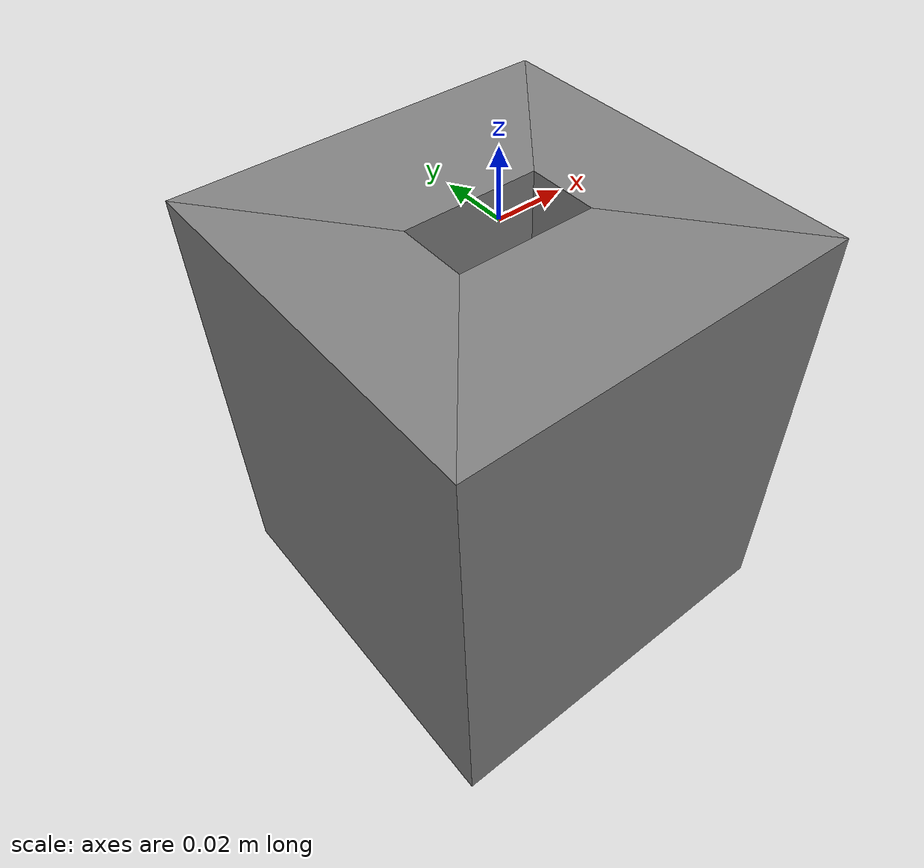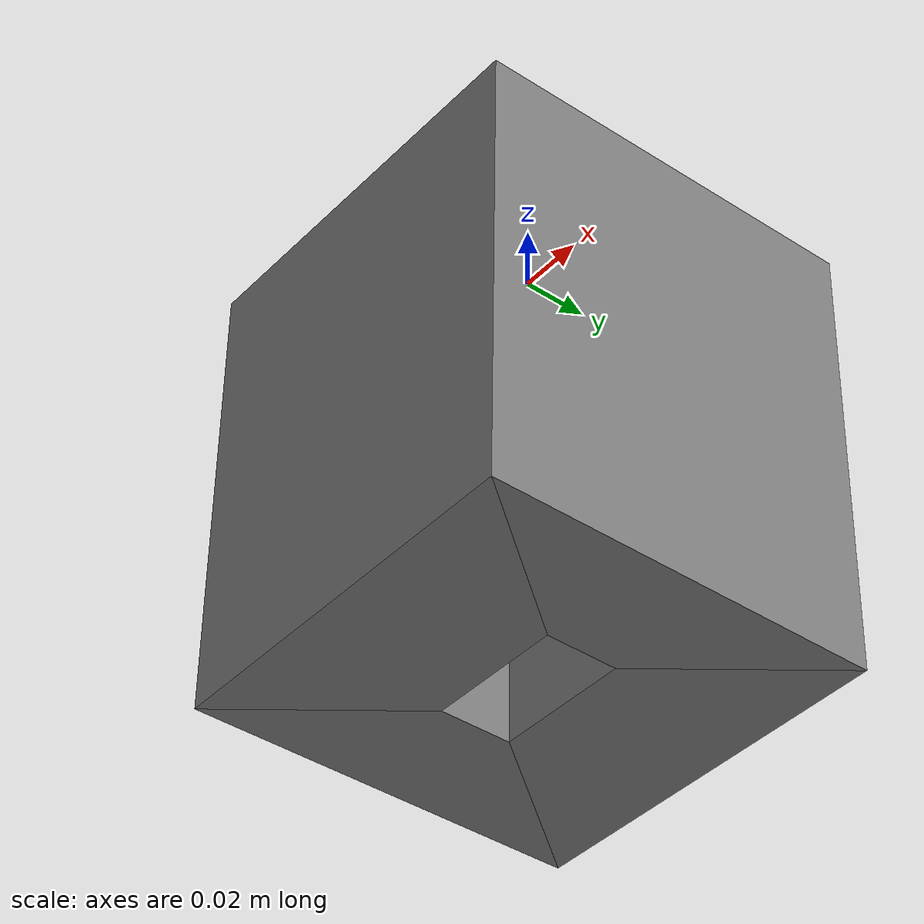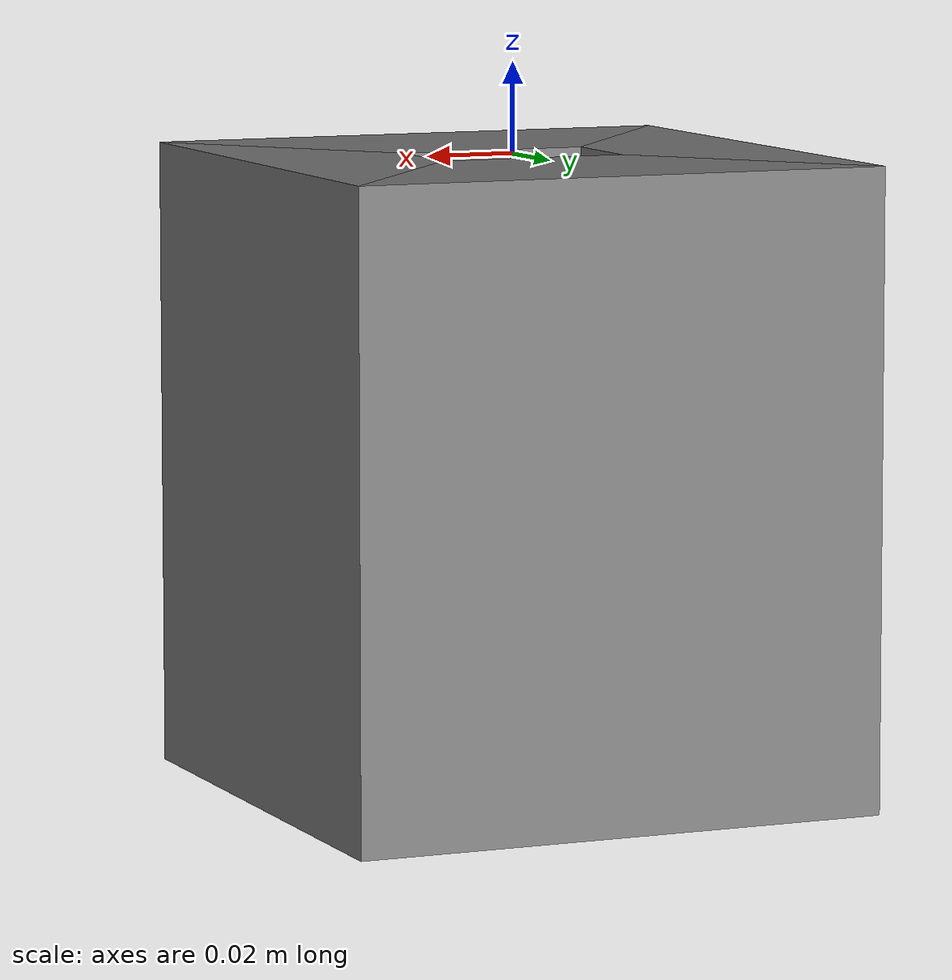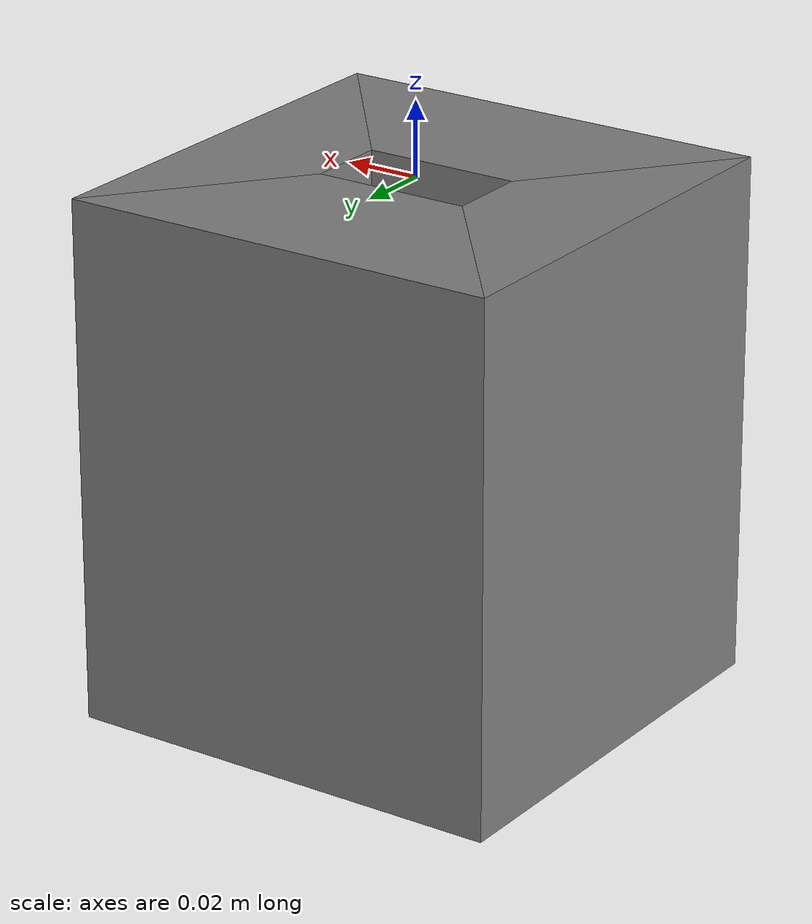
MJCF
<mujoco model="hole">
  <default>
    <default class="collision">
      <geom group="0" type="mesh" solimp="0.9 0.95 0.001 0.5 2" density="100000" solref=".004 1" condim="6"/>
    </default>
  </default>
  <asset>
    <texture file="../textures/red-wood.png" type="cube" name="red-wood" />
    <material name="plate_mat" texture="red-wood" texrepeat="3 3" specular="0.4" shininess="0.1" />
    <mesh refquat="1 0 0 0" file="meshes/guriguri-large-rectangle-hole/Body6.stl" name="hole_collision_top"/>
    <mesh refquat="1 0 0 0" file="meshes/guriguri-large-rectangle-hole/Body7.stl" name="hole_collision_left"/>
    <mesh refquat="1 0 0 0" file="meshes/guriguri-large-rectangle-hole/Body8.stl" name="hole_collision_bottom"/>
    <mesh refquat="1 0 0 0" file="meshes/guriguri-large-rectangle-hole/Body9.stl" name="hole_collision_right"/>
  </asset>
  <worldbody>
    <body>
      <body name="object" pos="0 0 0">
        <geom mesh="hole_collision_top" class="collision" />
        <geom mesh="hole_collision_left" class="collision" />
        <geom mesh="hole_collision_bottom" class="collision" />
        <geom mesh="hole_collision_right" class="collision" />
      </body>
      <site rgba="0 0 0 0" size="0.005" pos="0 0 -0.14" name="bottom_site"/>
      <site rgba="0 0 0 0" size="0.005" pos="0 0 0.00" name="top_site"/>
      <site rgba="0 0 0 0" size="0.005" pos="0.06 0.06 0" name="horizontal_radius_site"/>

    </body>
  </worldbody>
</mujoco>
